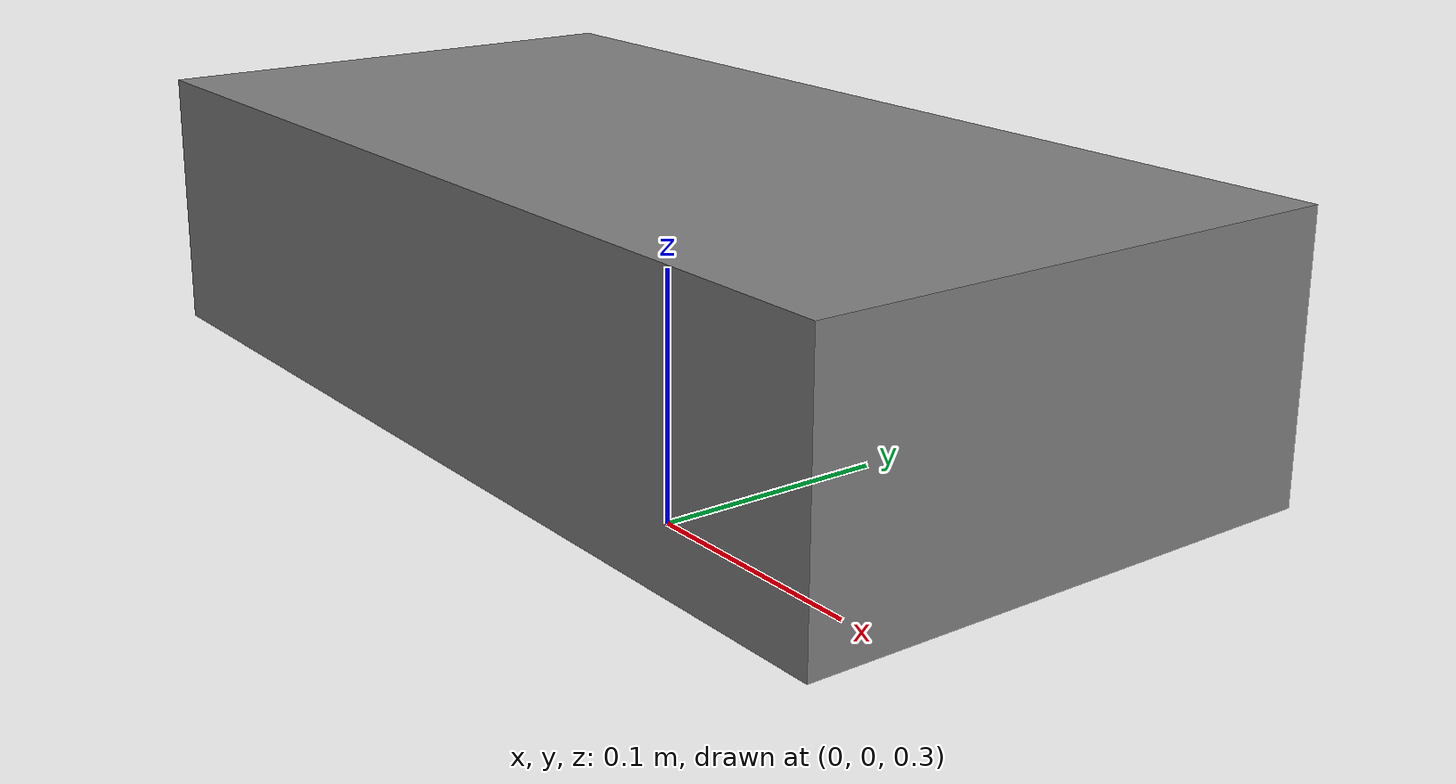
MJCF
<mujoco>
  <option gravity="0 0 -9.81" timestep="0.001"/>
  <worldbody>
    <body name="missile" pos="0 0 0.4">
      <freejoint/>
      <geom type="box" size="0.2 0.1 0.05" density="1000"/>
      <!-- 质心 site -->
      <site name="missile_com" pos="0 0 0" size="0.01" rgba="0 1 0 1"/>
    </body>
  </worldbody>

  <sensor>
    <accelerometer name="acc_com" site="missile_com"/>
    <gyro          name="gyro_com" site="missile_com"/>
  </sensor>
</mujoco>
